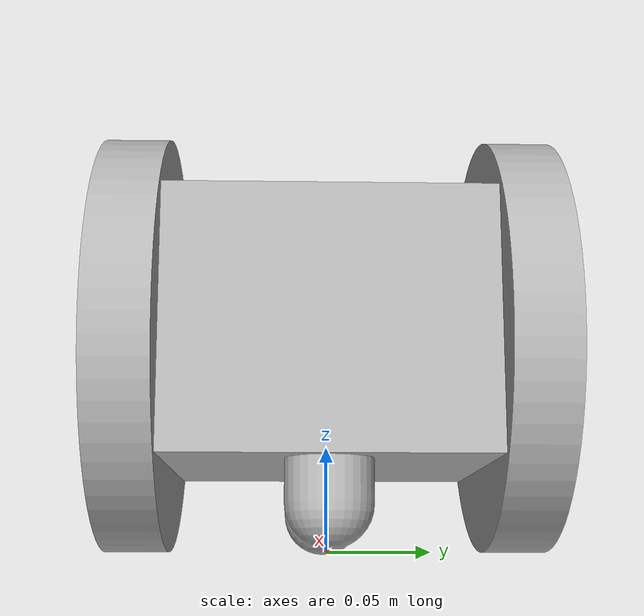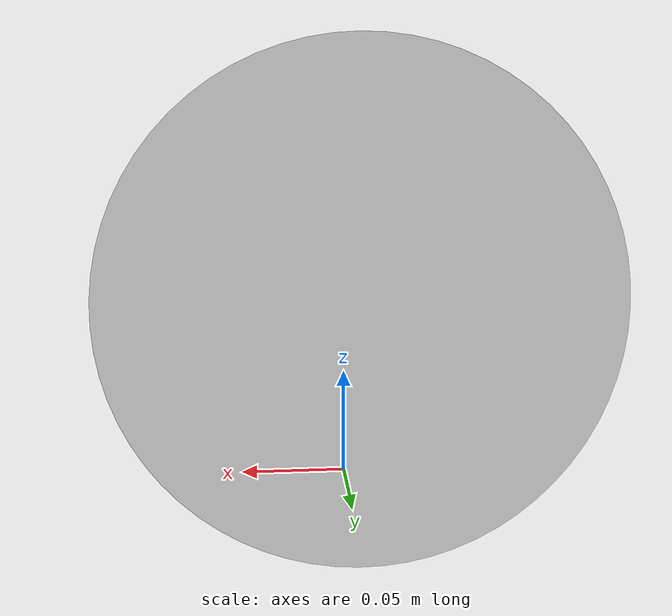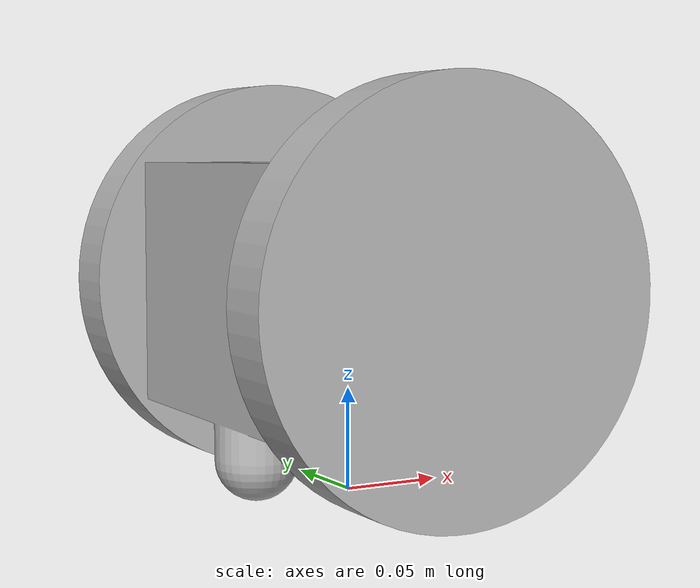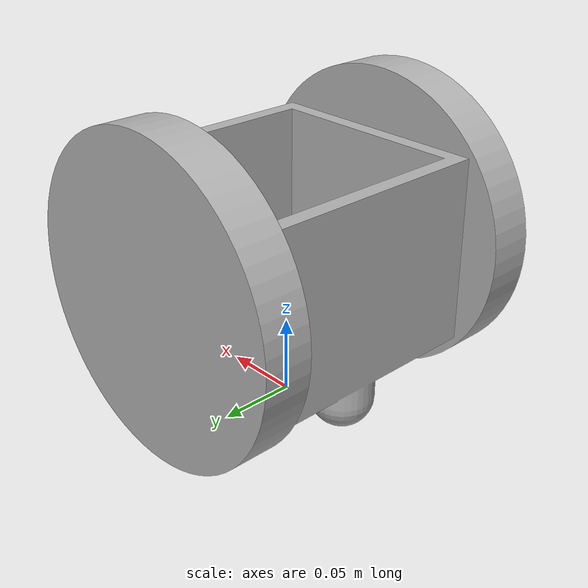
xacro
<?xml version="1.0" ?>
<robot name="trial1.5" xmlns:xacro="http://www.ros.org/wiki/xacro">

<xacro:include filename="$(find trial1.5_description)/urdf/materials.xacro" />
<xacro:include filename="$(find trial1.5_description)/urdf/trial1.5.trans" />
<xacro:include filename="$(find trial1.5_description)/urdf/trial1.5.gazebo" />
<link name="base_link">
  <inertial>
    <origin rpy="0 0 0" xyz="-9.834758843655714e-18 0.0 0.0829734549221174"/>
    <mass value="0.9802623523414715"/>
    <inertia ixx="0.004249" ixy="0.0" ixz="-0.0" iyy="0.004471" iyz="-0.0" izz="0.00542"/>
  </inertial>
  <visual>
    <origin rpy="0 0 0" xyz="0 0 0"/>
    <geometry>
      <mesh filename="package://trial1.5_description/meshes/base_link.stl" scale="0.001 0.001 0.001"/>
    </geometry>
    <material name="silver"/>
  </visual>
  <collision>
    <origin rpy="0 0 0" xyz="0 0 0"/>
    <geometry>
      <mesh filename="package://trial1.5_description/meshes/base_link.stl" scale="0.001 0.001 0.001"/>
    </geometry>
  </collision>
</link>

<link name="left_wheel_1">
  <inertial>
    <origin rpy="0 0 0" xyz="1.9300077000406764e-17 0.015 1.3877787807814457e-17"/>
    <mass value="0.8765043503515522"/>
    <inertia ixx="0.002257" ixy="0.0" ixz="0.0" iyy="0.004383" iyz="0.0" izz="0.002257"/>
  </inertial>
  <visual>
    <origin rpy="0 0 0" xyz="-0.0 -0.075 -0.1"/>
    <geometry>
      <mesh filename="package://trial1.5_description/meshes/left_wheel_1.stl" scale="0.001 0.001 0.001"/>
    </geometry>
    <material name="silver"/>
  </visual>
  <collision>
    <origin rpy="0 0 0" xyz="-0.0 -0.075 -0.1"/>
    <geometry>
      <mesh filename="package://trial1.5_description/meshes/left_wheel_1.stl" scale="0.001 0.001 0.001"/>
    </geometry>
  </collision>
</link>

<link name="right_wheel_1">
  <inertial>
    <origin rpy="0 0 0" xyz="1.9300077000406764e-17 -0.015 1.3877787807814457e-17"/>
    <mass value="0.8765043503515522"/>
    <inertia ixx="0.002257" ixy="-0.0" ixz="0.0" iyy="0.004383" iyz="-0.0" izz="0.002257"/>
  </inertial>
  <visual>
    <origin rpy="0 0 0" xyz="-0.0 0.075 -0.1"/>
    <geometry>
      <mesh filename="package://trial1.5_description/meshes/right_wheel_1.stl" scale="0.001 0.001 0.001"/>
    </geometry>
    <material name="silver"/>
  </visual>
  <collision>
    <origin rpy="0 0 0" xyz="-0.0 0.075 -0.1"/>
    <geometry>
      <mesh filename="package://trial1.5_description/meshes/right_wheel_1.stl" scale="0.001 0.001 0.001"/>
    </geometry>
  </collision>
</link>

<joint name="Rev3" type="continuous">
  <origin rpy="0 0 0" xyz="0.0 0.075 0.1"/>
  <parent link="base_link"/>
  <child link="left_wheel_1"/>
  <axis xyz="0.0 1.0 0.0"/>
</joint>

<joint name="Rev4" type="continuous">
  <origin rpy="0 0 0" xyz="0.0 -0.075 0.1"/>
  <parent link="base_link"/>
  <child link="right_wheel_1"/>
  <axis xyz="0.0 -1.0 0.0"/>
</joint>

</robot>

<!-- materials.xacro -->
<robot name="trial1.5" xmlns:xacro="http://www.ros.org/wiki/xacro" >

<material name="silver">
  <color rgba="0.700 0.700 0.700 1.000"/>
</material>

</robot>

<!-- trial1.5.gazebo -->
<robot name="trial1.5" xmlns:xacro="http://www.ros.org/wiki/xacro" >

<xacro:property name="body_color" value="Gazebo/Silver" />

<gazebo>
  <plugin filename="libgazebo_ros_control.so" name="control"/>
</gazebo>
<gazebo reference="base_link">
  <material>${body_color}</material>
  <mu1>0.2</mu1>
  <mu2>0.2</mu2>
  <selfCollide>true</selfCollide>
  <gravity>true</gravity>
</gazebo>

<gazebo reference="left_wheel_1">
  <material>${body_color}</material>
  <mu1>0.2</mu1>
  <mu2>0.2</mu2>
  <selfCollide>true</selfCollide>
</gazebo>

<gazebo reference="right_wheel_1">
  <material>${body_color}</material>
  <mu1>0.2</mu1>
  <mu2>0.2</mu2>
  <selfCollide>true</selfCollide>
</gazebo>

</robot>
